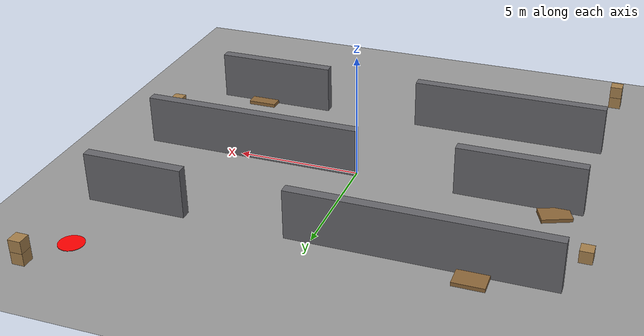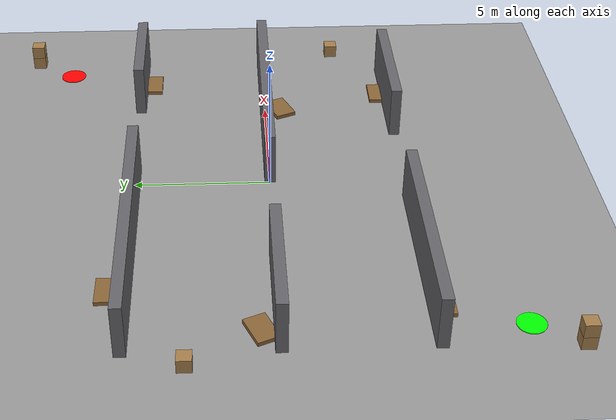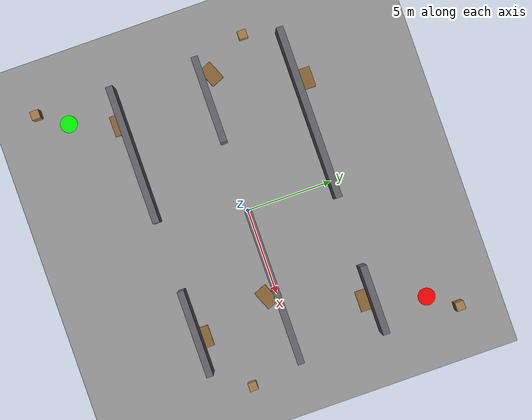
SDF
<?xml version="1.0" ?>
<sdf version="1.9">
  <world name="warehouse_world">

    <!-- Core system plugins (required by Gazebo Harmonic/gz-sim) -->
    <plugin
      filename="gz-sim-physics-system"
      name="gz::sim::systems::Physics">
    </plugin>
    <plugin
      filename="gz-sim-user-commands-system"
      name="gz::sim::systems::UserCommands">
    </plugin>
    <plugin
      filename="gz-sim-scene-broadcaster-system"
      name="gz::sim::systems::SceneBroadcaster">
    </plugin>
    <plugin
      filename="gz-sim-sensors-system"
      name="gz::sim::systems::Sensors">
      <render_engine>ogre2</render_engine>
    </plugin>

    <!-- Lightweight physics settings (same as Forest World) -->
    <physics name="default_physics" type="dart">
      <max_step_size>0.004</max_step_size>
      <real_time_factor>1.0</real_time_factor>
      <real_time_update_rate>250</real_time_update_rate>
    </physics>

    <!-- Scene / lighting: identical to Forest World -->
    <scene>
      <ambient>0.7 0.7 0.7 1</ambient>
      <background>0.72 0.82 0.93 1</background>
      <shadows>false</shadows>
      <grid>false</grid>
      <sky></sky>
    </scene>

    <light type="directional" name="sun">
      <cast_shadows>false</cast_shadows>
      <pose>0 0 10 0 0 0</pose>
      <diffuse>0.9 0.9 0.85 1</diffuse>
      <specular>0.2 0.2 0.2 1</specular>
      <direction>-0.4 0.2 -0.9</direction>
      <intensity>1.0</intensity>
    </light>

    <!-- Flat floor: 60 x 60 m -->
    <model name="ground_plane">
      <static>true</static>
      <link name="link">
        <collision name="collision">
          <geometry>
            <plane>
              <normal>0 0 1</normal>
              <size>60 60</size>
            </plane>
          </geometry>
          <surface>
            <friction>
              <ode>
                <mu>0.9</mu>
                <mu2>0.9</mu2>
              </ode>
            </friction>
          </surface>
        </collision>
        <visual name="visual">
          <geometry>
            <plane>
              <normal>0 0 1</normal>
              <size>60 60</size>
            </plane>
          </geometry>
          <material>
            <ambient>0.55 0.55 0.55 1</ambient>
            <diffuse>0.6 0.6 0.6 1</diffuse>
            <specular>0.1 0.1 0.1 1</specular>
          </material>
        </visual>
      </link>
    </model>

    <!-- START / GOAL MARKERS                                   -->
    <!-- Same coordinates and style as Forest World.            -->
    <!-- Visual-only (no collision) so they never interfere     -->
    <!-- with navigation or obstacle avoidance.                 -->
    <model name="start_marker">
      <static>true</static>
      <pose>-8 -8 0.01 0 0 0</pose>
      <link name="link">
        <visual name="visual">
          <geometry>
            <cylinder>
              <radius>0.5</radius>
              <length>0.02</length>
            </cylinder>
          </geometry>
          <material>
            <ambient>0 1 0 1</ambient>
            <diffuse>0 1 0 1</diffuse>
            <emissive>0 0.3 0 1</emissive>
          </material>
        </visual>
      </link>
    </model>

    <model name="goal_marker">
      <static>true</static>
      <pose>8 8 0.01 0 0 0</pose>
      <link name="link">
        <visual name="visual">
          <geometry>
            <cylinder>
              <radius>0.5</radius>
              <length>0.02</length>
            </cylinder>
          </geometry>
          <material>
            <ambient>1 0 0 1</ambient>
            <diffuse>1 0 0 1</diffuse>
            <emissive>0.3 0 0 1</emissive>
          </material>
        </visual>
      </link>
    </model>

    <!-- WAREHOUSE LAYOUT                                       -->
    <!-- Box primitives only, no meshes, no textures, no Fuel.  -->
    <!-- Three staggered rack rows, each with a single gap in   -->
    <!-- a different lateral position, force a zigzag route     -->
    <!-- from Start to Goal (several left/right turns). The     -->
    <!-- direct diagonal is blocked by Rack A1. No dead ends:    -->
    <!-- every gap connects through to open space on both sides. -->
    <!-- 6 racks + 6 pallets + 6 boxes = 18 objects total.       -->

    <!-- Row A (y = -5): gap centered near x = 1 -->
    <model name="rack_A1">
      <static>true</static>
      <pose>-5 -5 1 0 0 0</pose>
      <link name="link">
        <collision name="collision">
          <geometry><box><size>8 0.4 2</size></box></geometry>
        </collision>
        <visual name="visual">
          <geometry><box><size>8 0.4 2</size></box></geometry>
          <material><ambient>0.4 0.4 0.42 1</ambient><diffuse>0.4 0.4 0.42 1</diffuse></material>
        </visual>
      </link>
    </model>

    <model name="rack_A2">
      <static>true</static>
      <pose>5.5 -5 1 0 0 0</pose>
      <link name="link">
        <collision name="collision">
          <geometry><box><size>5 0.4 2</size></box></geometry>
        </collision>
        <visual name="visual">
          <geometry><box><size>5 0.4 2</size></box></geometry>
          <material><ambient>0.4 0.4 0.42 1</ambient><diffuse>0.4 0.4 0.42 1</diffuse></material>
        </visual>
      </link>
    </model>

    <!-- Row B (y = 0): gap centered near x = -2 -->
    <model name="rack_B1">
      <static>true</static>
      <pose>-6.5 0 1 0 0 0</pose>
      <link name="link">
        <collision name="collision">
          <geometry><box><size>5 0.4 2</size></box></geometry>
        </collision>
        <visual name="visual">
          <geometry><box><size>5 0.4 2</size></box></geometry>
          <material><ambient>0.4 0.4 0.42 1</ambient><diffuse>0.4 0.4 0.42 1</diffuse></material>
        </visual>
      </link>
    </model>

    <model name="rack_B2">
      <static>true</static>
      <pose>4.5 0 1 0 0 0</pose>
      <link name="link">
        <collision name="collision">
          <geometry><box><size>9 0.4 2</size></box></geometry>
        </collision>
        <visual name="visual">
          <geometry><box><size>9 0.4 2</size></box></geometry>
          <material><ambient>0.4 0.4 0.42 1</ambient><diffuse>0.4 0.4 0.42 1</diffuse></material>
        </visual>
      </link>
    </model>

    <!-- Row C (y = 5): gap centered near x = 3 -->
    <model name="rack_C1">
      <static>true</static>
      <pose>-4 5 1 0 0 0</pose>
      <link name="link">
        <collision name="collision">
          <geometry><box><size>10 0.4 2</size></box></geometry>
        </collision>
        <visual name="visual">
          <geometry><box><size>10 0.4 2</size></box></geometry>
          <material><ambient>0.4 0.4 0.42 1</ambient><diffuse>0.4 0.4 0.42 1</diffuse></material>
        </visual>
      </link>
    </model>

    <model name="rack_C2">
      <static>true</static>
      <pose>7 5 1 0 0 0</pose>
      <link name="link">
        <collision name="collision">
          <geometry><box><size>4 0.4 2</size></box></geometry>
        </collision>
        <visual name="visual">
          <geometry><box><size>4 0.4 2</size></box></geometry>
          <material><ambient>0.4 0.4 0.42 1</ambient><diffuse>0.4 0.4 0.42 1</diffuse></material>
        </visual>
      </link>
    </model>

    <!-- Pallets: flat boxes set against the racks (decorative, out of the aisle gaps) -->
    <model name="pallet_1">
      <static>true</static>
      <pose>-7 -5.3 0.075 0 0 0</pose>
      <link name="link">
        <collision name="collision">
          <geometry><box><size>1.2 0.8 0.15</size></box></geometry>
        </collision>
        <visual name="visual">
          <geometry><box><size>1.2 0.8 0.15</size></box></geometry>
          <material><ambient>0.55 0.4 0.22 1</ambient><diffuse>0.55 0.4 0.22 1</diffuse></material>
        </visual>
      </link>
    </model>

    <model name="pallet_2">
      <static>true</static>
      <pose>6 -4.7 0.075 0 0 0</pose>
      <link name="link">
        <collision name="collision">
          <geometry><box><size>1.2 0.8 0.15</size></box></geometry>
        </collision>
        <visual name="visual">
          <geometry><box><size>1.2 0.8 0.15</size></box></geometry>
          <material><ambient>0.55 0.4 0.22 1</ambient><diffuse>0.55 0.4 0.22 1</diffuse></material>
        </visual>
      </link>
    </model>

    <model name="pallet_3">
      <static>true</static>
      <pose>-8 0.6 0.075 0 0 0.4</pose>
      <link name="link">
        <collision name="collision">
          <geometry><box><size>1.2 0.8 0.15</size></box></geometry>
        </collision>
        <visual name="visual">
          <geometry><box><size>1.2 0.8 0.15</size></box></geometry>
          <material><ambient>0.55 0.4 0.22 1</ambient><diffuse>0.55 0.4 0.22 1</diffuse></material>
        </visual>
      </link>
    </model>

    <model name="pallet_4">
      <static>true</static>
      <pose>5 -0.6 0.075 0 0 0.4</pose>
      <link name="link">
        <collision name="collision">
          <geometry><box><size>1.2 0.8 0.15</size></box></geometry>
        </collision>
        <visual name="visual">
          <geometry><box><size>1.2 0.8 0.15</size></box></geometry>
          <material><ambient>0.55 0.4 0.22 1</ambient><diffuse>0.55 0.4 0.22 1</diffuse></material>
        </visual>
      </link>
    </model>

    <model name="pallet_5">
      <static>true</static>
      <pose>-6 5.6 0.075 0 0 0</pose>
      <link name="link">
        <collision name="collision">
          <geometry><box><size>1.2 0.8 0.15</size></box></geometry>
        </collision>
        <visual name="visual">
          <geometry><box><size>1.2 0.8 0.15</size></box></geometry>
          <material><ambient>0.55 0.4 0.22 1</ambient><diffuse>0.55 0.4 0.22 1</diffuse></material>
        </visual>
      </link>
    </model>

    <model name="pallet_6">
      <static>true</static>
      <pose>7 4.6 0.075 0 0 0</pose>
      <link name="link">
        <collision name="collision">
          <geometry><box><size>1.2 0.8 0.15</size></box></geometry>
        </collision>
        <visual name="visual">
          <geometry><box><size>1.2 0.8 0.15</size></box></geometry>
          <material><ambient>0.55 0.4 0.22 1</ambient><diffuse>0.55 0.4 0.22 1</diffuse></material>
        </visual>
      </link>
    </model>

    <!-- Stacked storage boxes: small cubes near the start/goal corners and side walls, clear of aisles -->
    <model name="box_1">
      <static>true</static>
      <pose>-9 -9.5 0.25 0 0 0</pose>
      <link name="link">
        <collision name="collision">
          <geometry><box><size>0.5 0.5 0.5</size></box></geometry>
        </collision>
        <visual name="visual">
          <geometry><box><size>0.5 0.5 0.5</size></box></geometry>
          <material><ambient>0.65 0.5 0.3 1</ambient><diffuse>0.65 0.5 0.3 1</diffuse></material>
        </visual>
      </link>
    </model>

    <model name="box_2">
      <static>true</static>
      <pose>-9 -9.5 0.75 0 0 0</pose>
      <link name="link">
        <collision name="collision">
          <geometry><box><size>0.5 0.5 0.5</size></box></geometry>
        </collision>
        <visual name="visual">
          <geometry><box><size>0.5 0.5 0.5</size></box></geometry>
          <material><ambient>0.65 0.5 0.3 1</ambient><diffuse>0.65 0.5 0.3 1</diffuse></material>
        </visual>
      </link>
    </model>

    <model name="box_3">
      <static>true</static>
      <pose>9 9.5 0.25 0 0 0</pose>
      <link name="link">
        <collision name="collision">
          <geometry><box><size>0.5 0.5 0.5</size></box></geometry>
        </collision>
        <visual name="visual">
          <geometry><box><size>0.5 0.5 0.5</size></box></geometry>
          <material><ambient>0.65 0.5 0.3 1</ambient><diffuse>0.65 0.5 0.3 1</diffuse></material>
        </visual>
      </link>
    </model>

    <model name="box_4">
      <static>true</static>
      <pose>9 9.5 0.75 0 0 0</pose>
      <link name="link">
        <collision name="collision">
          <geometry><box><size>0.5 0.5 0.5</size></box></geometry>
        </collision>
        <visual name="visual">
          <geometry><box><size>0.5 0.5 0.5</size></box></geometry>
          <material><ambient>0.65 0.5 0.3 1</ambient><diffuse>0.65 0.5 0.3 1</diffuse></material>
        </visual>
      </link>
    </model>

    <model name="box_5">
      <static>true</static>
      <pose>-9.5 3 0.25 0 0 0</pose>
      <link name="link">
        <collision name="collision">
          <geometry><box><size>0.5 0.5 0.5</size></box></geometry>
        </collision>
        <visual name="visual">
          <geometry><box><size>0.5 0.5 0.5</size></box></geometry>
          <material><ambient>0.65 0.5 0.3 1</ambient><diffuse>0.65 0.5 0.3 1</diffuse></material>
        </visual>
      </link>
    </model>

    <model name="box_6">
      <static>true</static>
      <pose>9.5 -3 0.25 0 0 0</pose>
      <link name="link">
        <collision name="collision">
          <geometry><box><size>0.5 0.5 0.5</size></box></geometry>
        </collision>
        <visual name="visual">
          <geometry><box><size>0.5 0.5 0.5</size></box></geometry>
          <material><ambient>0.65 0.5 0.3 1</ambient><diffuse>0.65 0.5 0.3 1</diffuse></material>
        </visual>
      </link>
    </model>

  </world>
</sdf>
